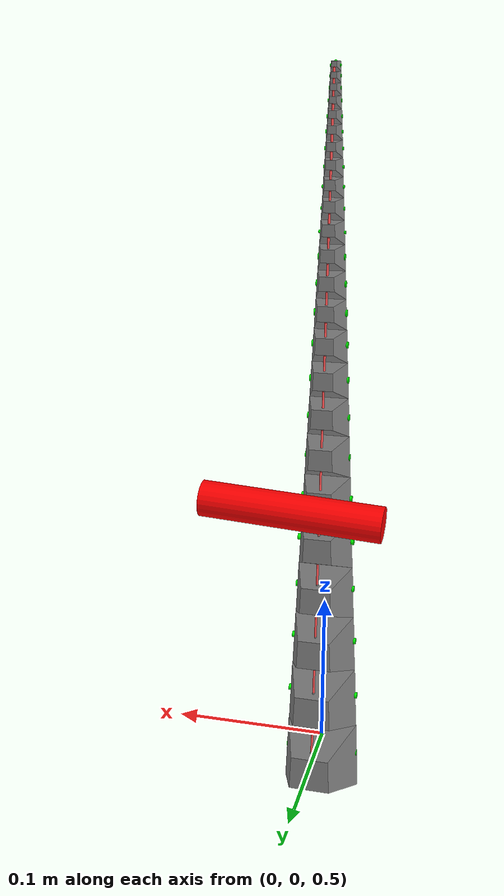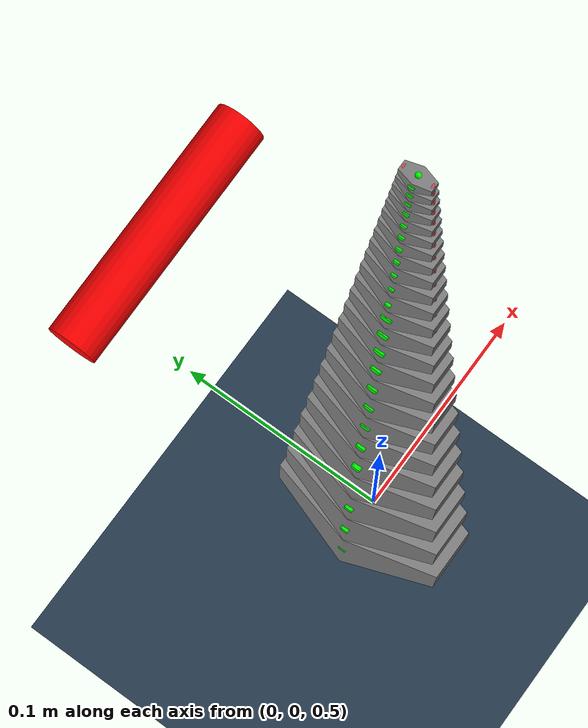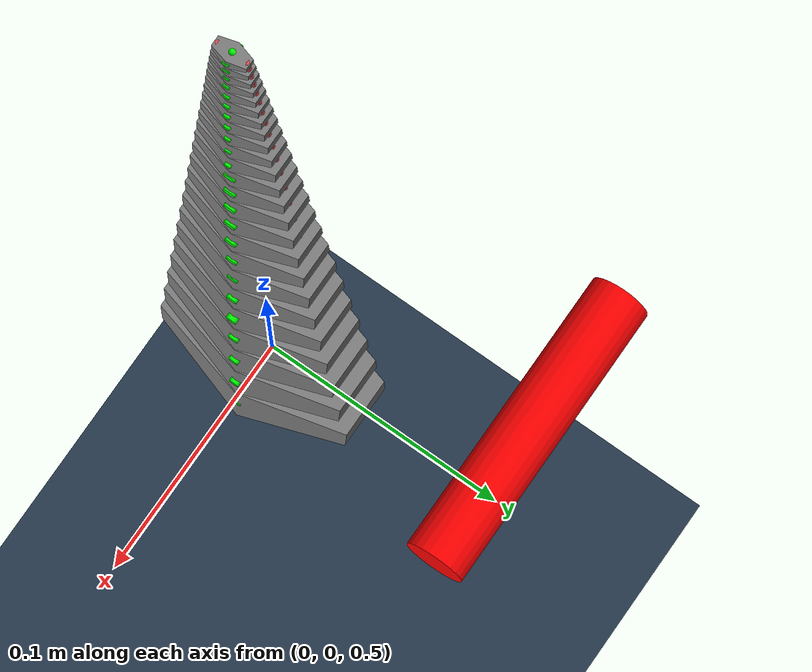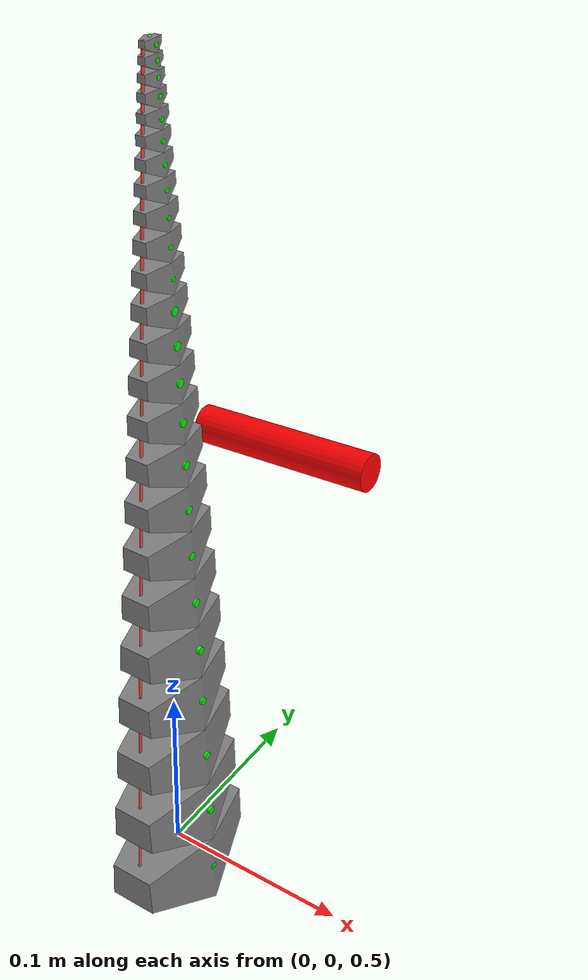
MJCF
<mujoco model="karcsi">
  <compiler angle="radian"/>
 <option timestep="0.001" solver="Newton" iterations="1000" tolerance="1e-18" gravity="0 0 0" integrator="implicitfast"/>
  <size nconmax="10000"/>
  <asset>
    <mesh name="baselink_1" file="baselink.stl" scale="0.001000000 0.001000000 0.001000000"/>
    <mesh name="baselink_2" file="baselink.stl" scale="0.000911774 0.000911774 0.000911774"/>
    <mesh name="baselink_3" file="baselink.stl" scale="0.000831332 0.000831332 0.000831332"/>
    <mesh name="baselink_4" file="baselink.stl" scale="0.000757987 0.000757987 0.000757987"/>
    <mesh name="baselink_5" file="baselink.stl" scale="0.000691113 0.000691113 0.000691113"/>
    <mesh name="baselink_6" file="baselink.stl" scale="0.000630139 0.000630139 0.000630139"/>
    <mesh name="baselink_7" file="baselink.stl" scale="0.000574545 0.000574545 0.000574545"/>
    <mesh name="baselink_8" file="baselink.stl" scale="0.000523855 0.000523855 0.000523855"/>
    <mesh name="baselink_9" file="baselink.stl" scale="0.000477638 0.000477638 0.000477638"/>
    <mesh name="baselink_10" file="baselink.stl" scale="0.000435498 0.000435498 0.000435498"/>
    <mesh name="baselink_11" file="baselink.stl" scale="0.000397076 0.000397076 0.000397076"/>
    <mesh name="baselink_12" file="baselink.stl" scale="0.000362043 0.000362043 0.000362043"/>
    <mesh name="baselink_13" file="baselink.stl" scale="0.000330102 0.000330102 0.000330102"/>
    <mesh name="baselink_14" file="baselink.stl" scale="0.000300978 0.000300978 0.000300978"/>
    <mesh name="baselink_15" file="baselink.stl" scale="0.000274424 0.000274424 0.000274424"/>
    <mesh name="baselink_16" file="baselink.stl" scale="0.000250213 0.000250213 0.000250213"/>
    <mesh name="baselink_17" file="baselink.stl" scale="0.000228138 0.000228138 0.000228138"/>
    <mesh name="baselink_18" file="baselink.stl" scale="0.000208010 0.000208010 0.000208010"/>
    <mesh name="baselink_19" file="baselink.stl" scale="0.000189658 0.000189658 0.000189658"/>
    <mesh name="baselink_20" file="baselink.stl" scale="0.000172926 0.000172926 0.000172926"/>
    <mesh name="baselink_21" file="baselink.stl" scale="0.000157669 0.000157669 0.000157669"/>
    <mesh name="baselink_22" file="baselink.stl" scale="0.000143759 0.000143759 0.000143759"/>
    <mesh name="baselink_23" file="baselink.stl" scale="0.000131075 0.000131075 0.000131075"/>
    <mesh name="baselink_24" file="baselink.stl" scale="0.000119511 0.000119511 0.000119511"/>
    <texture name="texplane" type="2d" builtin="checker" rgb1=".2 .3 .4" rgb2=".1 0.15 0.2" width="512" height="512" mark="cross" markrgb=".8 .8 .8"/>
    <material name="matplane" reflectance="0.3" texture="texplane" texrepeat="1 1" texuniform="true"/>
  </asset>
  <worldbody>
    <body name="target" pos="0 0.1 0.7">
        <freejoint name="target_freejoint"/>
        <geom name="target_geom" type="cylinder" size="0.01 0.05"  euler="0 1.51 0" rgba="1 0 0 1" mass="2000000" contype="1" conaffinity="1" solimp="1 0.95 0.01"
        solref="0.002 2" />
    </body>

    <geom name="ground" type="plane" size="10 10 1" pos="0 0 0" quat="1 0 0 0" material="matplane" condim="1"/>
    <light pos="1 0.5 0.7" dir="-1 -0.5 -1" directional="true" castshadow="false" diffuse="1 1 1" specular="0.3 0.3 0.3"/>
    <body name="link1" pos="0 0 0.464082120">
      <geom type="mesh" mesh="baselink_1" contype="1" conaffinity="1"/>
      <site name="s1_1" pos="0.000000000 0.036394210 0.016795002" size="0.001000 0.001000 0.001000"/>
      <site name="s1_2" pos="0.000000000 0.034423562 0.042801474" size="0.001000 0.001000 0.001000"/>
      <site name="s1_3" pos="0.000000000 -0.036394210 0.016795002" size="0.001000 0.001000 0.001000"/>
      <site name="s1_4" pos="0.000000000 -0.034423562 0.042801474" size="0.001000 0.001000 0.001000"/>
       <site name="marker_1"
          type="cylinder"
          pos="0 0 0.025"
          euler="0 1.57079632679 0"
          size="0.002 0.024"
          rgba="0 1 0 1"/>
      <body name="link2" pos="0 0 0.045951152">
        <joint type="hinge" axis="1 0 0" range="-0.523598776 0.523598776" stiffness="0.065000" damping="0.100000"/>
        <geom type="mesh" mesh="baselink_2" contype="1" conaffinity="1"/>
        <site name="s2_1" pos="0.000000000 0.033183304 0.015313251" size="0.000912 0.000912 0.000912"/>
        <site name="s2_2" pos="0.000000000 0.031386518 0.039025283" size="0.000912 0.000912 0.000912"/>
        <site name="s2_3" pos="0.000000000 -0.033183304 0.015313251" size="0.000912 0.000912 0.000912"/>
        <site name="s2_4" pos="0.000000000 -0.031386518 0.039025283" size="0.000912 0.000912 0.000912"/>
         <site name="marker_2"
          type="cylinder"
          pos="0 0 0.023"
          euler="0 1.57079632679 0"
          size="0.002 0.023"
          rgba="0 1 0 1"/>
      <body name="link3" pos="0 0 0.041897079">
        <joint type="hinge" axis="1 0 0" range="-0.523598776 0.523598776" stiffness="0.054037" damping="0.091178"/>
        <geom type="mesh" mesh="baselink_3" contype="1" conaffinity="1"/>
        <site name="s3_1" pos="0.000000000 0.030255683 0.013962228" size="0.000831 0.000831 0.000831"/>
        <site name="s3_2" pos="0.000000000 0.028617420 0.035582249" size="0.000831 0.000831 0.000831"/>
        <site name="s3_3" pos="0.000000000 -0.030255683 0.013962228" size="0.000831 0.000831 0.000831"/>
        <site name="s3_4" pos="0.000000000 -0.028617420 0.035582249" size="0.000831 0.000831 0.000831"/>
          <site name="marker_3"
          type="cylinder"
          pos="0 0 0.021"
          euler="0 1.57079632679 0"
          size="0.002 0.021"
          rgba="0 1 0 1"/>
      <body name="link4" pos="0 0 0.038200679">
        <joint type="hinge" axis="1 0 0" range="-0.523598776 0.523598776" stiffness="0.044922" damping="0.091178"/>
        <geom type="mesh" mesh="baselink_4" contype="1" conaffinity="1"/>
        <site name="s4_1" pos="0.000000000 0.027586354 0.012730400" size="0.000758 0.000758 0.000758"/>
        <site name="s4_2" pos="0.000000000 0.026092627 0.032442980" size="0.000758 0.000758 0.000758"/>
        <site name="s4_3" pos="0.000000000 -0.027586354 0.012730400" size="0.000758 0.000758 0.000758"/>
        <site name="s4_4" pos="0.000000000 -0.026092627 0.032442980" size="0.000758 0.000758 0.000758"/>
          <site name="marker_4"
          type="cylinder"
          pos="0 0 0.02"
          euler="0 1.57079632679 0"
          size="0.002 0.019"
          rgba="0 1 0 1"/>
      <body name="link5" pos="0 0 0.034830396">
        <joint type="hinge" axis="1 0 0" range="-0.523598776 0.523598776" stiffness="0.037345" damping="0.075798"/>
        <geom type="mesh" mesh="baselink_5" contype="1" conaffinity="1"/>
        <site name="s5_1" pos="0.000000000 0.025152528 0.011607252" size="0.000691 0.000691 0.000691"/>
        <site name="s5_2" pos="0.000000000 0.023790586 0.029580674" size="0.000691 0.000691 0.000691"/>
        <site name="s5_3" pos="0.000000000 -0.025152528 0.011607252" size="0.000691 0.000691 0.000691"/>
        <site name="s5_4" pos="0.000000000 -0.023790586 0.029580674" size="0.000691 0.000691 0.000691"/>
          <site name="marker_5"
          type="cylinder"
          pos="0 0 0.018"
          euler="0 1.57079632679 0"
          size="0.002 0.018"
          rgba="0 1 0 1"/>
      <body name="link6" pos="0 0 0.031757459">
        <joint type="hinge" axis="1 0 0" range="-0.523598776 0.523598776" stiffness="0.031046" damping="0.069112"/>
        <geom type="mesh" mesh="baselink_6" contype="1" conaffinity="1"/>
        <site name="s6_1" pos="0.000000000 0.022933428 0.010583193" size="0.000630 0.000630 0.000630"/>
        <site name="s6_2" pos="0.000000000 0.021691645 0.026970898" size="0.000630 0.000630 0.000630"/>
        <site name="s6_3" pos="0.000000000 -0.022933428 0.010583193" size="0.000630 0.000630 0.000630"/>
        <site name="s6_4" pos="0.000000000 -0.021691645 0.026970898" size="0.000630 0.000630 0.000630"/>
         <site name="marker_6"
          type="cylinder"
          pos="0 0 0.015"
          euler="0 1.57079632679 0"
          size="0.002 0.016"
          rgba="0 1 0 1"/>
      <body name="link7" pos="0 0 0.028955634">
        <joint type="hinge" axis="1 0 0" range="-0.523598776 0.523598776" stiffness="0.025810" damping="0.063014"/>
        <geom type="mesh" mesh="baselink_7" contype="1" conaffinity="1"/>
        <site name="s7_1" pos="0.000000000 0.020910109 0.009649483" size="0.000575 0.000575 0.000575"/>
        <site name="s7_2" pos="0.000000000 0.019777884 0.024591371" size="0.000575 0.000575 0.000575"/>
        <site name="s7_3" pos="0.000000000 -0.020910109 0.009649483" size="0.000575 0.000575 0.000575"/>
        <site name="s7_4" pos="0.000000000 -0.019777884 0.024591371" size="0.000575 0.000575 0.000575"/>
         <site name="marker_7"
          type="cylinder"
          pos="0 0 0.013"
          euler="0 1.57079632679 0"
          size="0.002 0.014"
          rgba="0 1 0 1"/>
      <body name="link8" pos="0 0 0.026401003">
        <joint type="hinge" axis="1 0 0" range="-0.523598776 0.523598776" stiffness="0.021457" damping="0.057454"/>
        <geom type="mesh" mesh="baselink_8" contype="1" conaffinity="1"/>
        <site name="s8_1" pos="0.000000000 0.019065300 0.008798151" size="0.000524 0.000524 0.000524"/>
        <site name="s8_2" pos="0.000000000 0.018032965 0.022421779" size="0.000524 0.000524 0.000524"/>
        <site name="s8_3" pos="0.000000000 -0.019065300 0.008798151" size="0.000524 0.000524 0.000524"/>
        <site name="s8_4" pos="0.000000000 -0.018032965 0.022421779" size="0.000524 0.000524 0.000524"/>
         <site name="marker_8"
          type="cylinder"
          pos="0 0 0.012"
          euler="0 1.57079632679 0"
          size="0.002 0.013"
          rgba="0 1 0 1"/>
      <body name="link9" pos="0 0 0.024071755">
        <joint type="hinge" axis="1 0 0" range="-0.523598776 0.523598776" stiffness="0.017838" damping="0.052386"/>
        <geom type="mesh" mesh="baselink_9" contype="1" conaffinity="1"/>
        <site name="s9_1" pos="0.000000000 0.017383250 0.008021928" size="0.000478 0.000478 0.000478"/>
        <site name="s9_2" pos="0.000000000 0.016441994 0.020443602" size="0.000478 0.000478 0.000478"/>
        <site name="s9_3" pos="0.000000000 -0.017383250 0.008021928" size="0.000478 0.000478 0.000478"/>
        <site name="s9_4" pos="0.000000000 -0.016441994 0.020443602" size="0.000478 0.000478 0.000478"/>
          <site name="marker_9"
          type="cylinder"
          pos="0 0 0.0115"
          euler="0 1.57079632679 0"
          size="0.002 0.012"
          rgba="0 1 0 1"/>
      <body name="link10" pos="0 0 0.021948007">
        <joint type="hinge" axis="1 0 0" range="-0.523598776 0.523598776" stiffness="0.014829" damping="0.047764"/>
        <geom type="mesh" mesh="baselink_10" contype="1" conaffinity="1"/>
        <site name="s10_1" pos="0.000000000 0.015849600 0.007314187" size="0.000435 0.000435 0.000435"/>
        <site name="s10_2" pos="0.000000000 0.014991387 0.018639950" size="0.000435 0.000435 0.000435"/>
        <site name="s10_3" pos="0.000000000 -0.015849600 0.007314187" size="0.000435 0.000435 0.000435"/>
        <site name="s10_4" pos="0.000000000 -0.014991387 0.018639950" size="0.000435 0.000435 0.000435"/>
         <site name="marker_10"
          type="cylinder"
          pos="0 0 0.011"
          euler="0 1.57079632679 0"
          size="0.002 0.011"
          rgba="0 1 0 1"/>
      <body name="link11" pos="0 0 0.020011628">
        <joint type="hinge" axis="1 0 0" range="-0.523598776 0.523598776" stiffness="0.012328" damping="0.043550"/>
        <geom type="mesh" mesh="baselink_11" contype="1" conaffinity="1"/>
        <site name="s11_1" pos="0.000000000 0.014451258 0.006668888" size="0.000397 0.000397 0.000397"/>
        <site name="s11_2" pos="0.000000000 0.013668761 0.016995427" size="0.000397 0.000397 0.000397"/>
        <site name="s11_3" pos="0.000000000 -0.014451258 0.006668888" size="0.000397 0.000397 0.000397"/>
        <site name="s11_4" pos="0.000000000 -0.013668761 0.016995427" size="0.000397 0.000397 0.000397"/>
         <site name="marker_11"
          type="cylinder"
          pos="0 0 0.010"
          euler="0 1.57079632679 0"
          size="0.002 0.01"
          rgba="0 1 0 1"/>
      <body name="link12" pos="0 0 0.018246088">
        <joint type="hinge" axis="1 0 0" range="-0.523598776 0.523598776" stiffness="0.010248" damping="0.039708"/>
        <geom type="mesh" mesh="baselink_12" contype="1" conaffinity="1"/>
        <site name="s12_1" pos="0.000000000 0.013176285 0.006080520" size="0.000362 0.000362 0.000362"/>
        <site name="s12_2" pos="0.000000000 0.012462825 0.015495993" size="0.000362 0.000362 0.000362"/>
        <site name="s12_3" pos="0.000000000 -0.013176285 0.006080520" size="0.000362 0.000362 0.000362"/>
        <site name="s12_4" pos="0.000000000 -0.012462825 0.015495993" size="0.000362 0.000362 0.000362"/>
        <site name="marker_12"
          type="cylinder"
          pos="0 0 0.009"
          euler="0 1.57079632679 0"
          size="0.002 0.009"
          rgba="0 1 0 1"/>
      <body name="link13" pos="0 0 0.016636313">
        <joint type="hinge" axis="1 0 0" range="-0.523598776 0.523598776" stiffness="0.008520" damping="0.036204"/>
        <geom type="mesh" mesh="baselink_13" contype="1" conaffinity="1"/>
        <site name="s13_1" pos="0.000000000 0.012013798 0.005544062" size="0.000330 0.000330 0.000330"/>
        <site name="s13_2" pos="0.000000000 0.011363283 0.014128848" size="0.000330 0.000330 0.000330"/>
        <site name="s13_3" pos="0.000000000 -0.012013798 0.005544062" size="0.000330 0.000330 0.000330"/>
        <site name="s13_4" pos="0.000000000 -0.011363283 0.014128848" size="0.000330 0.000330 0.000330"/>
         <site name="marker_13"
          type="cylinder"
          pos="0 0 0.008"
          euler="0 1.57079632679 0"
          size="0.002 0.008"
          rgba="0 1 0 1"/>
      <body name="link14" pos="0 0 0.015168563">
        <joint type="hinge" axis="1 0 0" range="-0.523598776 0.523598776" stiffness="0.007083" damping="0.033010"/>
        <geom type="mesh" mesh="baselink_14" contype="1" conaffinity="1"/>
        <site name="s14_1" pos="0.000000000 0.010953872 0.005054933" size="0.000301 0.000301 0.000301"/>
        <site name="s14_2" pos="0.000000000 0.010360749 0.012882320" size="0.000301 0.000301 0.000301"/>
        <site name="s14_3" pos="0.000000000 -0.010953872 0.005054933" size="0.000301 0.000301 0.000301"/>
        <site name="s14_4" pos="0.000000000 -0.010360749 0.012882320" size="0.000301 0.000301 0.000301"/>
         <site name="marker_14"
          type="cylinder"
          pos="0 0 0.007"
          euler="0 1.57079632679 0"
          size="0.001 0.008"
          rgba="0 1 0 1"/>
      <body name="link15" pos="0 0 0.013830305">
        <joint type="hinge" axis="1 0 0" range="-0.523598776 0.523598776" stiffness="0.005888" damping="0.030098"/>
        <geom type="mesh" mesh="baselink_15" contype="1" conaffinity="1"/>
        <site name="s15_1" pos="0.000000000 0.009987459 0.004608958" size="0.000274 0.000274 0.000274"/>
        <site name="s15_2" pos="0.000000000 0.009446665 0.011745768" size="0.000274 0.000274 0.000274"/>
        <site name="s15_3" pos="0.000000000 -0.009987459 0.004608958" size="0.000274 0.000274 0.000274"/>
        <site name="s15_4" pos="0.000000000 -0.009446665 0.011745768" size="0.000274 0.000274 0.000274"/>
           <site name="marker_15"
          type="cylinder"
          pos="0 0 0.0065"
          euler="0 1.57079632679 0"
          size="0.001 0.007"
          rgba="0 1 0 1"/>
      <body name="link16" pos="0 0 0.012610117">
        <joint type="hinge" axis="1 0 0" range="-0.523598776 0.523598776" stiffness="0.004895" damping="0.027442"/>
        <geom type="mesh" mesh="baselink_16" contype="1" conaffinity="1"/>
        <site name="s16_1" pos="0.000000000 0.009106308 0.004202329" size="0.000250 0.000250 0.000250"/>
        <site name="s16_2" pos="0.000000000 0.008613226 0.010709489" size="0.000250 0.000250 0.000250"/>
        <site name="s16_3" pos="0.000000000 -0.009106308 0.004202329" size="0.000250 0.000250 0.000250"/>
        <site name="s16_4" pos="0.000000000 -0.008613226 0.010709489" size="0.000250 0.000250 0.000250"/>
         <site name="marker_16"
          type="cylinder"
          pos="0 0 0.006"
          euler="0 1.57079632679 0"
          size="0.001 0.0065"
          rgba="0 1 0 1"/>
      <body name="link17" pos="0 0 0.011497580">
        <joint type="hinge" axis="1 0 0" range="-0.523598776 0.523598776" stiffness="0.004069" damping="0.025022"/>
        <geom type="mesh" mesh="baselink_17" contype="1" conaffinity="1"/>
        <site name="s17_1" pos="0.000000000 0.008302897 0.003831576" size="0.000228 0.000228 0.000228"/>
        <site name="s17_2" pos="0.000000000 0.007853318 0.009764637" size="0.000228 0.000228 0.000228"/>
        <site name="s17_3" pos="0.000000000 -0.008302897 0.003831576" size="0.000228 0.000228 0.000228"/>
        <site name="s17_4" pos="0.000000000 -0.007853318 0.009764637" size="0.000228 0.000228 0.000228"/>
          <site name="marker_17"
          type="cylinder"
          pos="0 0 0.0055"
          euler="0 1.57079632679 0"
          size="0.001 0.006"
          rgba="0 1 0 1"/>
      <body name="link18" pos="0 0 0.010483198">
        <joint type="hinge" axis="1 0 0" range="-0.523598776 0.523598776" stiffness="0.003383" damping="0.022814"/>
        <geom type="mesh" mesh="baselink_18" contype="1" conaffinity="1"/>
        <site name="s18_1" pos="0.000000000 0.007570368 0.003493532" size="0.000208 0.000208 0.000208"/>
        <site name="s18_2" pos="0.000000000 0.007160453 0.008903145" size="0.000208 0.000208 0.000208"/>
        <site name="s18_3" pos="0.000000000 -0.007570368 0.003493532" size="0.000208 0.000208 0.000208"/>
        <site name="s18_4" pos="0.000000000 -0.007160453 0.008903145" size="0.000208 0.000208 0.000208"/>
         <site name="marker_18"
          type="cylinder"
          pos="0 0 0.005"
          euler="0 1.57079632679 0"
          size="0.001 0.0055"
          rgba="0 1 0 1"/>
      <body name="link19" pos="0 0 0.009558310">
        <joint type="hinge" axis="1 0 0" range="-0.523598776 0.523598776" stiffness="0.002812" damping="0.020802"/>
        <geom type="mesh" mesh="baselink_19" contype="1" conaffinity="1"/>
        <site name="s19_1" pos="0.000000000 0.006902467 0.003185313" size="0.000190 0.000190 0.000190"/>
        <site name="s19_2" pos="0.000000000 0.006528717 0.008117658" size="0.000190 0.000190 0.000190"/>
        <site name="s19_3" pos="0.000000000 -0.006902467 0.003185313" size="0.000190 0.000190 0.000190"/>
        <site name="s19_4" pos="0.000000000 -0.006528717 0.008117658" size="0.000190 0.000190 0.000190"/>
          <site name="marker_19"
          type="cylinder"
          pos="0 0 0.0045"
          euler="0 1.57079632679 0"
          size="0.001 0.005"
          rgba="0 1 0 1"/>
      <body name="link20" pos="0 0 0.008715021">
        <joint type="hinge" axis="1 0 0" range="-0.523598776 0.523598776" stiffness="0.002338" damping="0.018966"/>
        <geom type="mesh" mesh="baselink_20" contype="1" conaffinity="1"/>
        <site name="s20_1" pos="0.000000000 0.006293492 0.002904286" size="0.000173 0.000173 0.000173"/>
        <site name="s20_2" pos="0.000000000 0.005952716 0.007401472" size="0.000173 0.000173 0.000173"/>
        <site name="s20_3" pos="0.000000000 -0.006293492 0.002904286" size="0.000173 0.000173 0.000173"/>
        <site name="s20_4" pos="0.000000000 -0.005952716 0.007401472" size="0.000173 0.000173 0.000173"/>
          <site name="marker_20"
          type="cylinder"
          pos="0 0 0.004"
          euler="0 1.57079632679 0"
          size="0.001 0.0045"
          rgba="0 1 0 1"/>
      <body name="link21" pos="0 0 0.007946132">
        <joint type="hinge" axis="1 0 0" range="-0.523598776 0.523598776" stiffness="0.001944" damping="0.017292"/>
        <geom type="mesh" mesh="baselink_21" contype="1" conaffinity="1"/>
        <site name="s21_1" pos="0.000000000 0.005738244 0.002648054" size="0.000158 0.000158 0.000158"/>
        <site name="s21_2" pos="0.000000000 0.005427533 0.006748472" size="0.000158 0.000158 0.000158"/>
        <site name="s21_3" pos="0.000000000 -0.005738244 0.002648054" size="0.000158 0.000158 0.000158"/>
        <site name="s21_4" pos="0.000000000 -0.005427533 0.006748472" size="0.000158 0.000158 0.000158"/>
          <site name="marker_21"
          type="cylinder"
          pos="0 0 0.0045"
          euler="0 1.57079632679 0"
          size="0.001 0.004"
          rgba="0 1 0 1"/>
      <body name="link22" pos="0 0 0.007245079">
        <joint type="hinge" axis="1 0 0" range="-0.523598776 0.523598776" stiffness="0.001616" damping="0.015766"/>
        <geom type="mesh" mesh="baselink_22" contype="1" conaffinity="1" />
        <site name="s22_1" pos="0.000000000 0.005231983 0.002414427" size="0.000144 0.000144 0.000144"/>
        <site name="s22_2" pos="0.000000000 0.004948685 0.006153083" size="0.000144 0.000144 0.000144"/>
        <site name="s22_3" pos="0.000000000 -0.005231983 0.002414427" size="0.000144 0.000144 0.000144"/>
        <site name="s22_4" pos="0.000000000 -0.004948685 0.006153083" size="0.000144 0.000144 0.000144"/>
         <site
          name="marker_22"
          type="cylinder"
          pos="0 0 0.004"
          euler="0 1.57079632679 0"
          size="0.001 0.0035"
          rgba="0 1 0 1"/>
      <body name="link23" pos="0 0 0.006605876">
        <joint type="hinge" axis="1 0 0" range="-0.523598776 0.523598776" stiffness="0.001343" damping="0.014376"/>
        <geom type="mesh" mesh="baselink_23" contype="1" conaffinity="1"/>
        <site name="s23_1" pos="0.000000000 0.004770388 0.002201413" size="0.000131 0.000131 0.000131"/>
        <site name="s23_2" pos="0.000000000 0.004512084 0.005610223" size="0.000131 0.000131 0.000131"/>
        <site name="s23_3" pos="0.000000000 -0.004770388 0.002201413" size="0.000131 0.000131 0.000131"/>
        <site name="s23_4" pos="0.000000000 -0.004512084 0.005610223" size="0.000131 0.000131 0.000131"/>
        <geom type="mesh" mesh="baselink_23" contype="1" conaffinity="1" />
         <site
          name="marker_23"
          type="cylinder"
          pos="0 0 0.0035"
          euler="0 1.57079632679 0"
          size="0.001 0.0032"
          rgba="0 1 0 1"/>
      <body name="link24" pos="0 0 0.006023068">
        <joint type="hinge" axis="1 0 0" range="-0.523598776 0.523598776" stiffness="0.001117" damping="0.013108"/>
        <geom type="mesh" mesh="baselink_24" contype="1" conaffinity="1" />

        <site name="s24_1" pos="0.000000000 0.004349517 0.002007191" size="0.000120 0.000120 0.000120"/>
        <site name="s24_2" pos="0.000000000 0.004114002 0.005115257" size="0.000120 0.000120 0.000120"/>
        <site name="s24_3" pos="0.000000000 -0.004349517 0.002007191" size="0.000120 0.000120 0.000120"/>
        <site name="s24_4" pos="0.000000000 -0.004114002 0.005115257" size="0.000120 0.000120 0.000120"/>

         <site
          name="marker_24"
          type="cylinder"
          pos="0 0 0.003"
          euler="0 1.57079632679 0"
          size="0.001 0.003"
          rgba="0 1 0 1"/>
          <site
          name="marker_25"
          type="sphere"
          pos="0 0 0.005"
          euler="0 1.57079632679 0"
          size="0.001"
          rgba="0 1 0 1"/>
      </body>
      </body>
      </body>
      </body>
      </body>
      </body>
      </body>
      </body>
      </body>
      </body>
      </body>
      </body>
      </body>
      </body>
      </body>
      </body>
      </body>
      </body>
      </body>
      </body>
      </body>
      </body>
      </body>
    </body>
  </worldbody>
  <keyframe>
    <key name="home"
         qpos="
            0 0 0 0 0 0 0 0 0 0 0 0
            0 0 0 0 0 0 0 0 0 0 0
          "
         qvel="
            0 0 0 0 0 0 0 0 0 0 0 0
            0 0 0 0 0 0 0 0 0 0 0
         "/>
</keyframe>

  <tendon>
    <spatial name="tendon1" width="0.0007" frictionloss="0.1" rgba=".95 .3 .3 1" limited="true" range="0.185632848 1.160205301">
      <site site="s1_1"/>
      <site site="s1_2"/>
      <site site="s2_1"/>
      <site site="s2_2"/>
      <site site="s3_1"/>
      <site site="s3_2"/>
      <site site="s4_1"/>
      <site site="s4_2"/>
      <site site="s5_1"/>
      <site site="s5_2"/>
      <site site="s6_1"/>
      <site site="s6_2"/>
      <site site="s7_1"/>
      <site site="s7_2"/>
      <site site="s8_1"/>
      <site site="s8_2"/>
      <site site="s9_1"/>
      <site site="s9_2"/>
      <site site="s10_1"/>
      <site site="s10_2"/>
      <site site="s11_1"/>
      <site site="s11_2"/>
      <site site="s12_1"/>
      <site site="s12_2"/>
      <site site="s13_1"/>
      <site site="s13_2"/>
      <site site="s14_1"/>
      <site site="s14_2"/>
      <site site="s15_1"/>
      <site site="s15_2"/>
      <site site="s16_1"/>
      <site site="s16_2"/>
      <site site="s17_1"/>
      <site site="s17_2"/>
      <site site="s18_1"/>
      <site site="s18_2"/>
      <site site="s19_1"/>
      <site site="s19_2"/>
      <site site="s20_1"/>
      <site site="s20_2"/>
      <site site="s21_1"/>
      <site site="s21_2"/>
      <site site="s22_1"/>
      <site site="s22_2"/>
      <site site="s23_1"/>
      <site site="s23_2"/>
      <site site="s24_1"/>
      <site site="s24_2"/>
    </spatial>
    <spatial name="tendon2" width="0.0007" frictionloss="0.1" rgba=".95 .3 .3 1" limited="true" range="0.185632848 1.160205301">
      <site site="s1_3"/>
      <site site="s1_4"/>
      <site site="s2_3"/>
      <site site="s2_4"/>
      <site site="s3_3"/>
      <site site="s3_4"/>
      <site site="s4_3"/>
      <site site="s4_4"/>
      <site site="s5_3"/>
      <site site="s5_4"/>
      <site site="s6_3"/>
      <site site="s6_4"/>
      <site site="s7_3"/>
      <site site="s7_4"/>
      <site site="s8_3"/>
      <site site="s8_4"/>
      <site site="s9_3"/>
      <site site="s9_4"/>
      <site site="s10_3"/>
      <site site="s10_4"/>
      <site site="s11_3"/>
      <site site="s11_4"/>
      <site site="s12_3"/>
      <site site="s12_4"/>
      <site site="s13_3"/>
      <site site="s13_4"/>
      <site site="s14_3"/>
      <site site="s14_4"/>
      <site site="s15_3"/>
      <site site="s15_4"/>
      <site site="s16_3"/>
      <site site="s16_4"/>
      <site site="s17_3"/>
      <site site="s17_4"/>
      <site site="s18_3"/>
      <site site="s18_4"/>
      <site site="s19_3"/>
      <site site="s19_4"/>
      <site site="s20_3"/>
      <site site="s20_4"/>
      <site site="s21_3"/>
      <site site="s21_4"/>
      <site site="s22_3"/>
      <site site="s22_4"/>
      <site site="s23_3"/>
      <site site="s23_4"/>
      <site site="s24_3"/>
      <site site="s24_4"/>
    </spatial>
  </tendon>
  <actuator>
    <position name="act1" tendon="tendon1" kp="5" ctrllimited="true" ctrlrange="-0.7 0.3" lengthrange="0.185632848 1.160205301"/>
    <position name="act2" tendon="tendon2" kp="5" ctrllimited="true" ctrlrange="-0.7 0.3"  lengthrange="0.185632848 1.160205301" />
  </actuator>
</mujoco>
